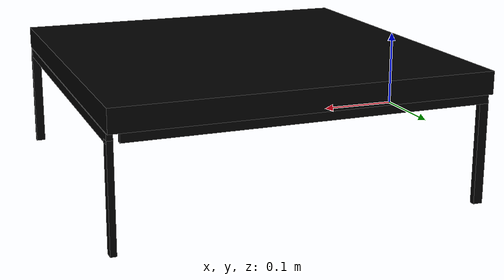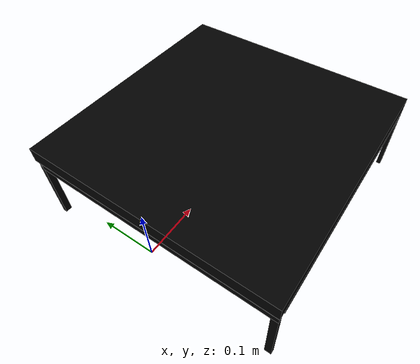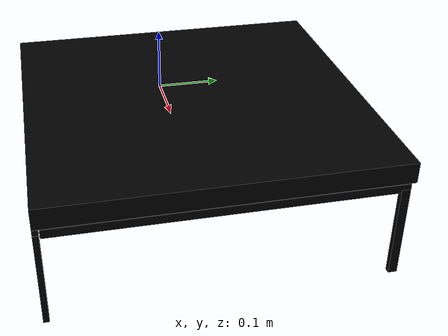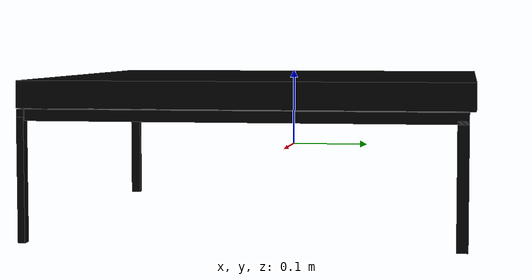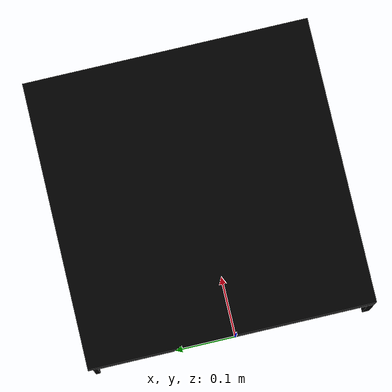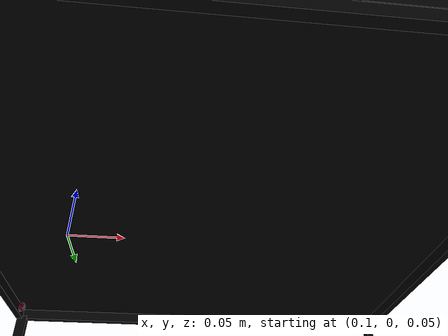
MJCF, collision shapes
<mujoco model="table_klubbo_0740">
  <custom>
    <numeric data="-0.377728 -0.012378 0.003795 0.706986 0.011743 -0.707032 0.011755" name="0_part0_initpos" />
    <numeric data="0.060959 0.087909 0.018798 -0.0 -0.008411 -0.999965 0.0" name="4_part4_initpos" />
    <numeric data="-0.357518 0.139566 0.003795 0.469594 0.469633 0.528655 0.52863" name="3_part3_initpos" />
    <numeric data="0.438389 0.113003 0.003795 0.706135 0.036633 0.70618 -0.036618" name="2_part2_initpos" />
    <numeric data="0.454202 -0.111513 0.003795 0.508427 -0.508468 -0.491419 0.491396" name="1_part1_initpos" />
  </custom>
  <asset>
    <mesh file="table_klubbo_0740/0.stl" name="part0" scale="0.0006 0.0006 0.0006" />
    <mesh file="table_klubbo_0740/4.stl" name="part4" scale="0.0006 0.0006 0.0006" />
    <mesh file="table_klubbo_0740/3.stl" name="part3" scale="0.0006 0.0006 0.0006" />
    <mesh file="table_klubbo_0740/2.stl" name="part2" scale="0.0006 0.0006 0.0006" />
    <mesh file="table_klubbo_0740/1.stl" name="part1" scale="0.0006 0.0006 0.0006" />
  </asset>
  <equality>
    <weld active="false" body1="0_part0" body2="4_part4" solimp="1 1 0.5" solref="0.01 0.3" />
    <weld active="false" body1="1_part1" body2="4_part4" solimp="1 1 0.5" solref="0.01 0.3" />
    <weld active="false" body1="2_part2" body2="4_part4" solimp="1 1 0.5" solref="0.01 0.3" />
    <weld active="false" body1="3_part3" body2="4_part4" solimp="1 1 0.5" solref="0.01 0.3" />
    <weld active="false" body1="3_part3" body2="4_part4" solimp="1 1 0.5" solref="0.01 0.3" />
    <weld active="false" body1="1_part1" body2="4_part4" solimp="1 1 0.5" solref="0.01 0.3" />
    <weld active="false" body1="2_part2" body2="4_part4" solimp="1 1 0.5" solref="0.01 0.3" />
    <weld active="false" body1="0_part0" body2="4_part4" solimp="1 1 0.5" solref="0.01 0.3" />
  </equality>
  <worldbody>
    <body name="0_part0" pos="0.0 0.0 0.0" quat="1 0 0 0">
      <geom conaffinity="0" contype="0" density="0" mesh="part0" name="0_part0_mesh" pos="0.0 0.0 0.0" rgba="0.82 0.71 0.55 1" type="mesh" />
      <site name="0_part0_horizontal_radius_site" pos="0.0 0.0 0.0" quat="1 0 0 0" rgba="0 0 0 0" size="0.0006" />
      <site name="0_part0_top_site" pos="0.0 0.0 0.070104" quat="1 0 0 0" rgba="0 0 0 0" size="0.0006" />
      <site name="0_part0_bottom_site" pos="0.0 0.0 -0.070104" quat="1 0 0 0" rgba="0 0 0 0" size="0.0006" />
      <site name="0_part0_corner_site8" pos="-0.00381 0.2286 0.070104" quat="1 0 0 0" rgba="0 0 0 0" size="0.012000000000000002" />
      <site name="0_part0_corner_site7" pos="0.00381 0.2286 0.070104" quat="1 0 0 0" rgba="0 0 0 0" size="0.012000000000000002" />
      <site name="0_part0_corner_site6" pos="0.00381 -0.2286 0.070104" quat="1 0 0 0" rgba="0 0 0 0" size="0.012000000000000002" />
      <site name="0_part0_corner_site5" pos="-0.00381 -0.2286 0.070104" quat="1 0 0 0" rgba="0 0 0 0" size="0.012000000000000002" />
      <site name="0_part0_corner_site4" pos="-0.00381 0.2286 -0.070104" quat="1 0 0 0" rgba="0 0 0 0" size="0.012000000000000002" />
      <site name="0_part0_corner_site3" pos="0.00381 0.2286 -0.070104" quat="1 0 0 0" rgba="0 0 0 0" size="0.012000000000000002" />
      <site name="0_part0_corner_site2" pos="0.00381 -0.2286 -0.070104" quat="1 0 0 0" rgba="0 0 0 0" size="0.012000000000000002" />
      <site name="0_part0_corner_site1" pos="-0.00381 -0.2286 -0.070104" quat="1 0 0 0" rgba="0 0 0 0" size="0.012000000000000002" />
      <site name="leg-top,0,conn_site4" pos="0.004200000000000001 0.21000000000000002 0.066" quat="0.5 0.5 0.5 0.5" rgba="0.9019 0.0980 0.2941 0.3" size="0.006" />
      <geom density="50" name="noviz_collision_0_part0_0" pos="0.0 0.0 0.0639" quat="1 0 0 0" rgba="0 0 0 0" size="0.00381 0.22800000000000004 0.006000000000000001" solref="0.001 1" type="box" />
      <geom density="50" name="noviz_collision_0_part0_1" pos="0.0 -0.22200000000000003 -0.004146522000000001" quat="1 0 0 0" rgba="0 0 0 0" size="0.00381 0.006000000000000001 0.066" solref="0.001 1" type="box" />
    </body>
    <body name="4_part4" pos="0.23241000731999997 0.007620007319999999 0.08077199982000001" quat="1 0 0 0">
      <geom conaffinity="0" contype="0" density="0" mesh="part4" name="4_part4_mesh" pos="0.0 0.0 0.0" rgba="0.82 0.71 0.55 1" type="mesh" />
      <site name="4_part4_horizontal_radius_site" pos="0.0 0.0 0.0" quat="1 0 0 0" rgba="0 0 0 0" size="0.0006" />
      <site name="4_part4_top_site" pos="0.0 0.0 0.0198119997" quat="1 0 0 0" rgba="0 0 0 0" size="0.0006" />
      <site name="4_part4_bottom_site" pos="0.0 0.0 -0.0198119997" quat="1 0 0 0" rgba="0 0 0 0" size="0.0006" />
      <site name="4_part4_corner_site8" pos="-0.23622000732000004 0.23622000732000004 0.0198119997" quat="1 0 0 0" rgba="0 0 0 0" size="0.012000000000000002" />
      <site name="4_part4_corner_site7" pos="0.23622000732000004 0.23622000732000004 0.0198119997" quat="1 0 0 0" rgba="0 0 0 0" size="0.012000000000000002" />
      <site name="4_part4_corner_site6" pos="0.23622000732000004 -0.23622000732000004 0.0198119997" quat="1 0 0 0" rgba="0 0 0 0" size="0.012000000000000002" />
      <site name="4_part4_corner_site5" pos="-0.23622000732000004 -0.23622000732000004 0.0198119997" quat="1 0 0 0" rgba="0 0 0 0" size="0.012000000000000002" />
      <site name="4_part4_corner_site4" pos="-0.23622000732000004 0.23622000732000004 -0.0198119997" quat="1 0 0 0" rgba="0 0 0 0" size="0.012000000000000002" />
      <site name="4_part4_corner_site3" pos="0.23622000732000004 0.23622000732000004 -0.0198119997" quat="1 0 0 0" rgba="0 0 0 0" size="0.012000000000000002" />
      <site name="4_part4_corner_site2" pos="0.23622000732000004 -0.23622000732000004 -0.0198119997" quat="1 0 0 0" rgba="0 0 0 0" size="0.012000000000000002" />
      <site name="4_part4_corner_site1" pos="-0.23622000732000004 -0.23622000732000004 -0.0198119997" quat="1 0 0 0" rgba="0 0 0 0" size="0.012000000000000002" />
      <site name="top-leg,0,conn_site4" pos="-0.22821 0.20238000000000003 -0.014772" quat="0.5 0.5 0.5 0.5" rgba="0.9019 0.0980 0.2941 0.3" size="0.006" />
      <site name="top-leg,0,conn_site3" pos="0.20799 0.22038 -0.014772" quat="0.7071067 0.7071068 0 0" rgba="0.9019 0.0980 0.2941 0.3" size="0.006" />
      <site name="top-leg,0,conn_site2" pos="0.22899000000000003 -0.20802 -0.014772" quat="0.5 0.5 -0.5 -0.5" rgba="0.9019 0.0980 0.2941 0.3" size="0.006" />
      <site name="top-leg,0,conn_site1" pos="-0.20781000000000002 -0.22782000000000002 -0.014772" quat="0 0 0.7071068 0.7071067" rgba="0.9019 0.0980 0.2941 0.3" size="0.006" />
      <geom density="50" name="noviz_collision_4_part4_0" pos="0.0 -0.000346068 0.0044280000000000005" quat="1 0 0 0" rgba="0 0 0 0" size="0.23621999999999999 0.23587392 0.0144" solref="0.001 1" type="box" />
    </body>
    <body name="3_part3" pos="0.23622000546 -0.22479 0.0" quat="1 0 0 0">
      <geom conaffinity="0" contype="0" density="0" mesh="part3" name="3_part3_mesh" pos="0.0 0.0 0.0" rgba="0.82 0.71 0.55 1" type="mesh" />
      <site name="3_part3_horizontal_radius_site" pos="-1.8000000000000002e-09 0.0 0.0" quat="1 0 0 0" rgba="0 0 0 0" size="0.0006" />
      <site name="3_part3_top_site" pos="-1.8000000000000002e-09 0.0 0.070104" quat="1 0 0 0" rgba="0 0 0 0" size="0.0006" />
      <site name="3_part3_bottom_site" pos="-1.8000000000000002e-09 0.0 -0.070104" quat="1 0 0 0" rgba="0 0 0 0" size="0.0006" />
      <site name="3_part3_corner_site8" pos="-0.23241000726 0.00381 0.070104" quat="1 0 0 0" rgba="0 0 0 0" size="0.012000000000000002" />
      <site name="3_part3_corner_site7" pos="0.23241000365999998 0.00381 0.070104" quat="1 0 0 0" rgba="0 0 0 0" size="0.012000000000000002" />
      <site name="3_part3_corner_site6" pos="0.23241000365999998 -0.00381 0.070104" quat="1 0 0 0" rgba="0 0 0 0" size="0.012000000000000002" />
      <site name="3_part3_corner_site5" pos="-0.23241000726 -0.00381 0.070104" quat="1 0 0 0" rgba="0 0 0 0" size="0.012000000000000002" />
      <site name="3_part3_corner_site4" pos="-0.23241000726 0.00381 -0.070104" quat="1 0 0 0" rgba="0 0 0 0" size="0.012000000000000002" />
      <site name="3_part3_corner_site3" pos="0.23241000365999998 0.00381 -0.070104" quat="1 0 0 0" rgba="0 0 0 0" size="0.012000000000000002" />
      <site name="3_part3_corner_site2" pos="0.23241000365999998 -0.00381 -0.070104" quat="1 0 0 0" rgba="0 0 0 0" size="0.012000000000000002" />
      <site name="3_part3_corner_site1" pos="-0.23241000726 -0.00381 -0.070104" quat="1 0 0 0" rgba="0 0 0 0" size="0.012000000000000002" />
      <site name="leg-top,0,conn_site1" pos="-0.21162 0.004589994 0.066" quat="0 0 0.7071068 0.7071067" rgba="0.9019 0.0980 0.2941 0.3" size="0.006" />
      <geom density="50" name="noviz_collision_3_part3_0" pos="0.003779994 0.0 0.0639" quat="1 0 0 0" rgba="0 0 0 0" size="0.22800000000000004 0.00381 0.006000000000000001" solref="0.001 1" type="box" />
      <geom density="50" name="noviz_collision_3_part3_1" pos="0.22638 0.0 -0.004200000000000001" quat="1 0 0 0" rgba="0 0 0 0" size="0.006000000000000001 0.00381 0.066" solref="0.001 1" type="box" />
    </body>
    <body name="2_part2" pos="0.46482000738 0.0038100036599999997 0.0" quat="1 0 0 0">
      <geom conaffinity="0" contype="0" density="0" mesh="part2" name="2_part2_mesh" pos="0.0 0.0 0.0" rgba="0.82 0.71 0.55 1" type="mesh" />
      <site name="2_part2_horizontal_radius_site" pos="0.0 0.0 0.0" quat="1 0 0 0" rgba="0 0 0 0" size="0.0006" />
      <site name="2_part2_top_site" pos="6.000000000000001e-11 0.0 0.070104" quat="1 0 0 0" rgba="0 0 0 0" size="0.0006" />
      <site name="2_part2_bottom_site" pos="6.000000000000001e-11 0.0 -0.070104" quat="1 0 0 0" rgba="0 0 0 0" size="0.0006" />
      <site name="2_part2_corner_site8" pos="-0.0038100073200000007 0.23241000365999998 0.070104" quat="1 0 0 0" rgba="0 0 0 0" size="0.012000000000000002" />
      <site name="2_part2_corner_site7" pos="0.0038100073800000005 0.23241000365999998 0.070104" quat="1 0 0 0" rgba="0 0 0 0" size="0.012000000000000002" />
      <site name="2_part2_corner_site6" pos="0.0038100073800000005 -0.23241000365999998 0.070104" quat="1 0 0 0" rgba="0 0 0 0" size="0.012000000000000002" />
      <site name="2_part2_corner_site5" pos="-0.0038100073200000007 -0.23241000365999998 0.070104" quat="1 0 0 0" rgba="0 0 0 0" size="0.012000000000000002" />
      <site name="2_part2_corner_site4" pos="-0.0038100073200000007 0.23241000365999998 -0.070104" quat="1 0 0 0" rgba="0 0 0 0" size="0.012000000000000002" />
      <site name="2_part2_corner_site3" pos="0.0038100073800000005 0.23241000365999998 -0.070104" quat="1 0 0 0" rgba="0 0 0 0" size="0.012000000000000002" />
      <site name="2_part2_corner_site2" pos="0.0038100073800000005 -0.23241000365999998 -0.070104" quat="1 0 0 0" rgba="0 0 0 0" size="0.012000000000000002" />
      <site name="2_part2_corner_site1" pos="-0.0038100073200000007 -0.23241000365999998 -0.070104" quat="1 0 0 0" rgba="0 0 0 0" size="0.012000000000000002" />
      <site name="leg-top,0,conn_site2" pos="-0.003420006 -0.20421000000000003 0.066" quat="0.5 0.5 -0.5 -0.5" rgba="0.9019 0.0980 0.2941 0.3" size="0.006" />
      <geom density="50" name="noviz_collision_2_part2_0" pos="0.0 0.004589994 0.0639" quat="1 0 0 0" rgba="0 0 0 0" size="0.00381 0.22800000000000004 0.006000000000000001" solref="0.001 1" type="box" />
      <geom density="50" name="noviz_collision_2_part2_1" pos="0.0 0.22659 -0.004200000000000001" quat="1 0 0 0" rgba="0 0 0 0" size="0.00381 0.006000000000000001 0.066" solref="0.001 1" type="box" />
    </body>
    <body name="1_part1" pos="0.22860000366000002 0.23241000365999998 0.0" quat="1 0 0 0">
      <geom conaffinity="0" contype="0" density="0" mesh="part1" name="1_part1_mesh" pos="0.0 0.0 0.0" rgba="0.82 0.71 0.55 1" type="mesh" />
      <site name="1_part1_horizontal_radius_site" pos="0.0 0.0 0.0" quat="1 0 0 0" rgba="0 0 0 0" size="0.0006" />
      <site name="1_part1_top_site" pos="0.0 0.0 0.070104" quat="1 0 0 0" rgba="0 0 0 0" size="0.0006" />
      <site name="1_part1_bottom_site" pos="0.0 0.0 -0.070104" quat="1 0 0 0" rgba="0 0 0 0" size="0.0006" />
      <site name="1_part1_corner_site8" pos="-0.23241000365999998 0.0038100036599999997 0.070104" quat="1 0 0 0" rgba="0 0 0 0" size="0.012000000000000002" />
      <site name="1_part1_corner_site7" pos="0.23241000365999998 0.0038100036599999997 0.070104" quat="1 0 0 0" rgba="0 0 0 0" size="0.012000000000000002" />
      <site name="1_part1_corner_site6" pos="0.23241000365999998 -0.0038100036599999997 0.070104" quat="1 0 0 0" rgba="0 0 0 0" size="0.012000000000000002" />
      <site name="1_part1_corner_site5" pos="-0.23241000365999998 -0.0038100036599999997 0.070104" quat="1 0 0 0" rgba="0 0 0 0" size="0.012000000000000002" />
      <site name="1_part1_corner_site4" pos="-0.23241000365999998 0.0038100036599999997 -0.070104" quat="1 0 0 0" rgba="0 0 0 0" size="0.012000000000000002" />
      <site name="1_part1_corner_site3" pos="0.23241000365999998 0.0038100036599999997 -0.070104" quat="1 0 0 0" rgba="0 0 0 0" size="0.012000000000000002" />
      <site name="1_part1_corner_site2" pos="0.23241000365999998 -0.0038100036599999997 -0.070104" quat="1 0 0 0" rgba="0 0 0 0" size="0.012000000000000002" />
      <site name="1_part1_corner_site1" pos="-0.23241000365999998 -0.0038100036599999997 -0.070104" quat="1 0 0 0" rgba="0 0 0 0" size="0.012000000000000002" />
      <site name="leg-top,0,conn_site3" pos="0.21180000000000002 -0.004410006 0.066" quat="0.7071067 0.7071068 0 0" rgba="0.9019 0.0980 0.2941 0.3" size="0.006" />
      <geom density="50" name="noviz_collision_1_part1_0" pos="-0.0030000000000000005 0.0 0.0639" quat="1 0 0 0" rgba="0 0 0 0" size="0.22800000000000004 0.00381 0.006000000000000001" solref="0.001 1" type="box" />
      <geom density="50" name="noviz_collision_1_part1_1" pos="-0.22560000000000002 0.0 -0.004200000000000001" quat="1 0 0 0" rgba="0 0 0 0" size="0.006000000000000001 0.00381 0.066" solref="0.001 1" type="box" />
    </body>
  </worldbody>
  <actuator />
  <sensor />
  <contact />
  <default />
</mujoco>
